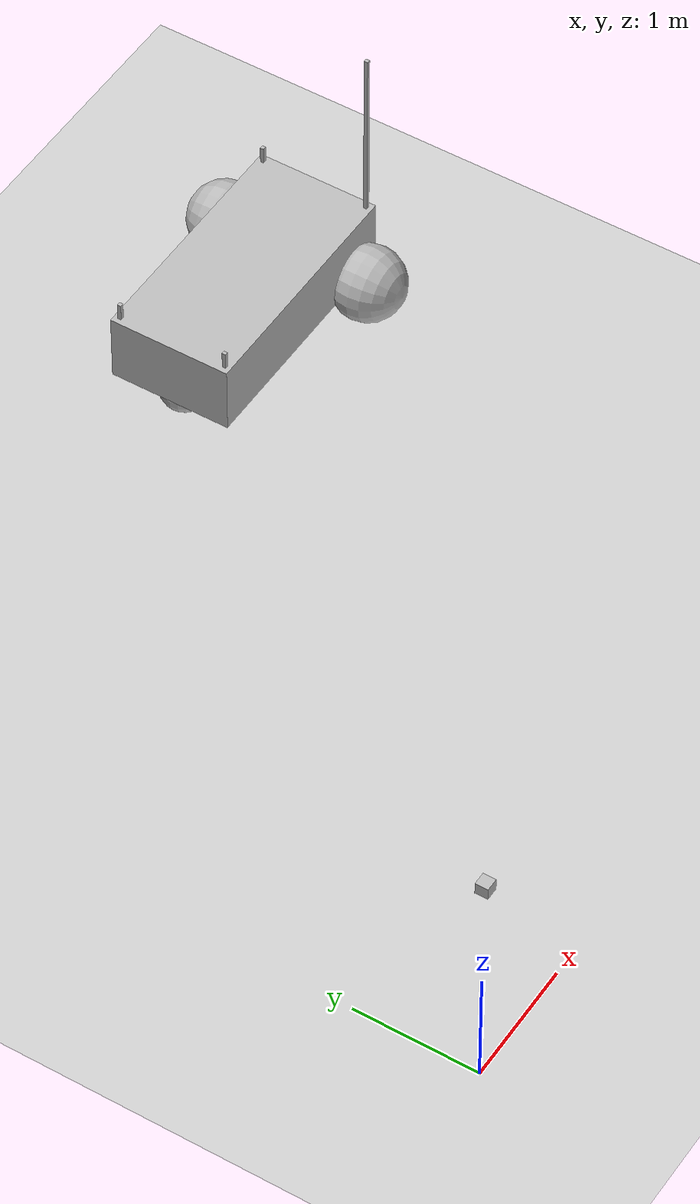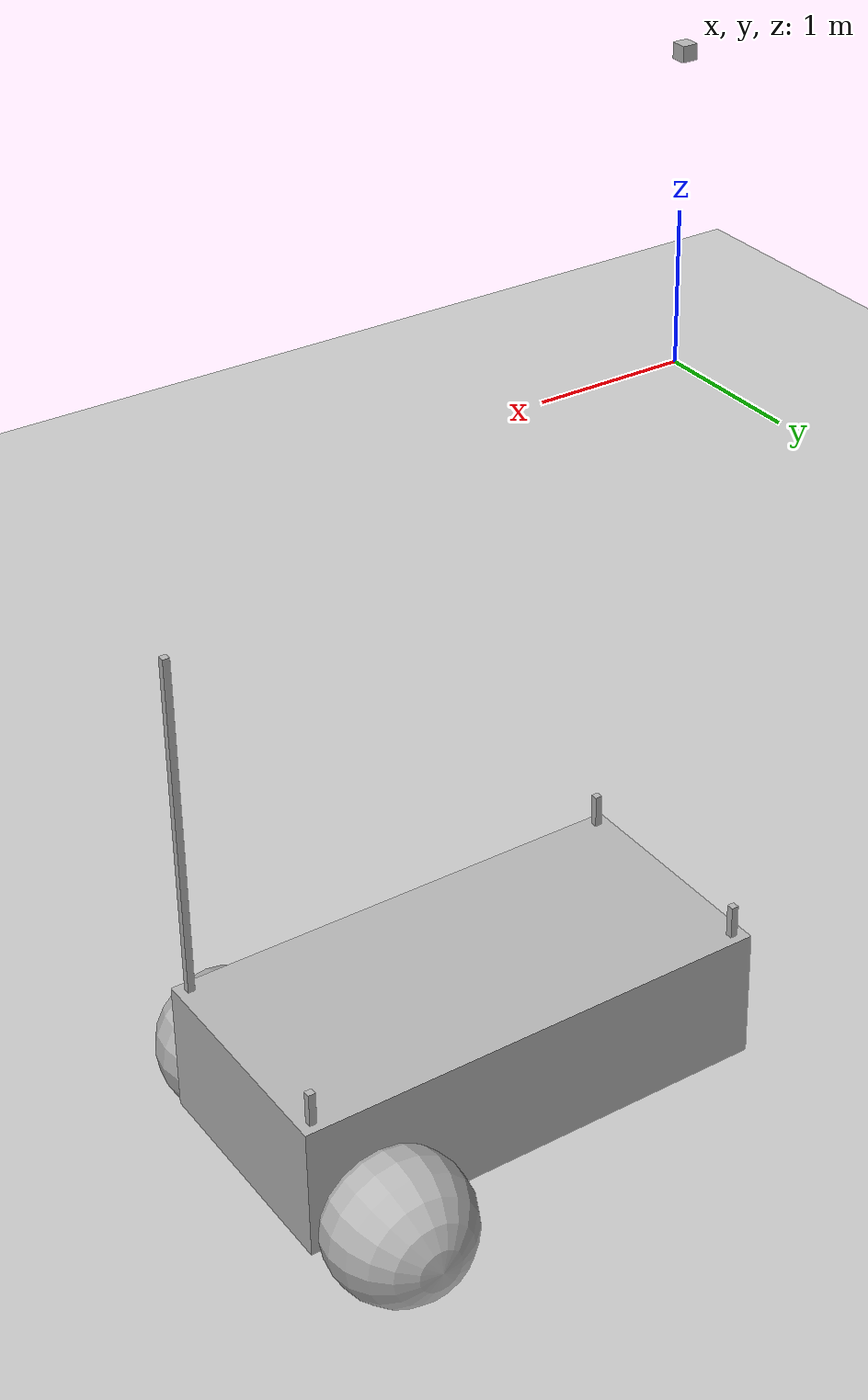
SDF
<?xml version="1.0" ?>
<sdf version="1.5">
  <world name="default">
    <scene>
      <shadows>0</shadows>
    </scene>
    <!-- A global light source -->
    <include>
      <uri>model://sun</uri>
    </include>
    <!-- A ground plane -->
    <include>
      <uri>model://ground_plane</uri>
    </include>
		<!-- vehicle -->

    <include>
			<name>rover_uwb</name>
      <uri>models//rover_uwb</uri>
			<pose>5 5 0.325 0 0 0</pose>
    </include>

    <include>
			<name>uwb_sensor</name>
      <uri>models//uwb_sensor</uri>
			<pose>0 0 2 0 0 0</pose>
    </include>

		<!-- Physics -->
    <physics name='default_physics' default='0' type='ode'>
      <gravity>0 0 -9.8066</gravity>
      <ode>
        <solver>
          <type>quick</type>
          <iters>10</iters>
          <sor>1.3</sor>
          <use_dynamic_moi_rescaling>0</use_dynamic_moi_rescaling>
        </solver>
        <constraints>
          <cfm>0</cfm>
          <erp>0.2</erp>
          <contact_max_correcting_vel>100</contact_max_correcting_vel>
          <contact_surface_layer>0.001</contact_surface_layer>
        </constraints>
      </ode>
      <max_step_size>0.004</max_step_size>
      <real_time_factor>1</real_time_factor>
      <real_time_update_rate>250</real_time_update_rate>
      <magnetic_field>6.0e-6 2.3e-5 -4.2e-5</magnetic_field>
    </physics>
  </world>
</sdf>

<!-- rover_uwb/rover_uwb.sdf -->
<sdf version='1.6'>

<model name='rover_uwb'>
      <pose>2 5 0.325 0 -0 0</pose>

      <link name='chassis'>
        <pose>-0.151427 -0 0.175 0 -0 0</pose>
        <inertial>
          <mass>1.14395</mass>
          <inertia>
            <ixx>0.126164</ixx>
            <ixy>0</ixy>
            <ixz>0</ixz>
            <iyy>0.416519</iyy>
            <iyz>0</iyz>
            <izz>0.481014</izz>
          </inertia>
        </inertial>
        <visual name='visual'>
          <geometry>
            <box>
              <size>2.01142 1 0.568726</size>
            </box>
          </geometry>
        </visual>
        <collision name='collision'>
          <geometry>
            <box>
              <size>2.01142 1 0.568726</size>
            </box>
          </geometry>
          <surface>
            <friction>
              <ode>
                <mu>0.7</mu>
                <mu2>0.7</mu2>
                <slip1>0</slip1>
                <slip2>0</slip2>
              </ode>
            </friction>
            <contact>
              <ode>
                <soft_cfm>0</soft_cfm>
                <soft_erp>0.2</soft_erp>
                <kp>1e+13</kp>
                <kd>1</kd>
                <max_vel>0.01</max_vel>
                <min_depth>0.01</min_depth>
              </ode>
              <bullet>
                <soft_cfm>0</soft_cfm>
                <soft_erp>0.2</soft_erp>
                <kp>1e+13</kp>
                <kd>1</kd>
		<split_impulse>1</split_impulse>
		<split_impulse_penetration_threshold>-0.01</split_impulse_penetration_threshold>
              </bullet>
            </contact>
          </surface>
        </collision>
      </link>

      <link name='left_wheel'>
        <pose>0.554283 0.625029 -0.025 -1.5707 0 0</pose>
        <inertial>
          <mass>2</mass>
          <inertia>
            <ixx>0.145833</ixx>
            <ixy>0</ixy>
            <ixz>0</ixz>
            <iyy>0.145833</iyy>
            <iyz>0</iyz>
            <izz>0.125</izz>
          </inertia>
        </inertial>
        <visual name='visual'>
          <geometry>
            <sphere>
              <radius>0.3</radius>
            </sphere>
          </geometry>
        </visual>
        <collision name='collision'>
          <geometry>
            <sphere>
              <radius>0.3</radius>
            </sphere>
          </geometry>
          <surface>
            <friction>
              <ode>
                <mu>1</mu>
                <mu2>1</mu2>
                <slip1>0</slip1>
                <slip2>0</slip2>
              </ode>
            </friction>
            <contact>
              <ode>
                <soft_cfm>0</soft_cfm>
                <soft_erp>0.2</soft_erp>
                <kp>1e+13</kp>
                <kd>1</kd>
                <max_vel>0.01</max_vel>
                <min_depth>0.01</min_depth>
              </ode>
            </contact>
          </surface>
        </collision>
      </link>

      <link name='right_wheel'>
        <pose>0.554282 -0.625029 -0.025 -1.5707 0 0</pose>
        <inertial>
          <mass>2</mass>
          <inertia>
            <ixx>0.145833</ixx>
            <ixy>0</ixy>
            <ixz>0</ixz>
            <iyy>0.145833</iyy>
            <iyz>0</iyz>
            <izz>0.125</izz>
          </inertia>
        </inertial>
        <visual name='visual'>
          <geometry>
            <sphere>
              <radius>0.3</radius>
            </sphere>
          </geometry>
        </visual>
        <collision name='collision'>
          <geometry>
            <sphere>
              <radius>0.3</radius>
            </sphere>
          </geometry>
          <surface>
            <friction>
              <ode>
                <mu>1</mu>
                <mu2>1</mu2>
                <slip1>0</slip1>
                <slip2>0</slip2>
              </ode>
            </friction>
            <contact>
              <ode>
                <soft_cfm>0</soft_cfm>
                <soft_erp>0.2</soft_erp>
                <kp>1e+13</kp>
                <kd>1</kd>
                <max_vel>0.01</max_vel>
                <min_depth>0.01</min_depth>
              </ode>
            </contact>
          </surface>
        </collision>
      </link>

      <link name='caster'>
        <pose>-0.957138 -0 -0.125 0 -0 0</pose>
        <inertial>
          <mass>1</mass>
          <inertia>
            <ixx>0.1</ixx>
            <ixy>0</ixy>
            <ixz>0</ixz>
            <iyy>0.1</iyy>
            <iyz>0</iyz>
            <izz>0.1</izz>
          </inertia>
        </inertial>
        <visual name='visual'>
          <geometry>
            <sphere>
              <radius>0.2</radius>
            </sphere>
          </geometry>
        </visual>
        <collision name='collision'>
          <geometry>
            <sphere>
              <radius>0.2</radius>
            </sphere>
          </geometry>
        </collision>
      </link>

      <link name='anchor_0'>
        <pose>-1.1 -0.45 0.5 0 -0 0</pose>
        <inertial>
          <mass>1</mass>
          <inertia>
            <ixx>0.1</ixx>
            <ixy>0</ixy>
            <ixz>0</ixz>
            <iyy>0.1</iyy>
            <iyz>0</iyz>
            <izz>0.1</izz>
          </inertia>
        </inertial>
        <visual name='visual'>
          <geometry>
            <box>
              <size>0.03 0.03 0.2</size>
            </box>
          </geometry>
        </visual>
        <collision name='collision'>
          <geometry>
            <box>
              <size>0.03 0.03 0.2</size>
            </box>
          </geometry>
        </collision>

      </link>

      <joint name='anchor_0_joint' type='fixed'>
        <parent>chassis</parent>
        <child>anchor_0</child>
        <axis>
          <xyz>0 0 1</xyz>
        </axis>
      </joint>

      <link name='anchor_1'>
        <pose>0.8 0.45 0.5 0 -0 0</pose>
        <inertial>
          <mass>1</mass>
          <inertia>
            <ixx>0.1</ixx>
            <ixy>0</ixy>
            <ixz>0</ixz>
            <iyy>0.1</iyy>
            <iyz>0</iyz>
            <izz>0.1</izz>
          </inertia>
        </inertial>
        <visual name='visual'>
          <geometry>
            <box>
              <size>0.03 0.03 0.2</size>
            </box>
          </geometry>
        </visual>
        <collision name='collision'>
          <geometry>
            <box>
              <size>0.03 0.03 0.2</size>
            </box>
          </geometry>
        </collision>

      </link>

      <joint name='anchor_1_joint' type='fixed'>
        <parent>chassis</parent>
        <child>anchor_1</child>
        <axis>
          <xyz>0 0 1</xyz>
        </axis>
      </joint>

      <link name='anchor_2'>
        <pose>-1.1 +0.45 0.5 0 -0 0</pose>
        <inertial>
          <mass>1</mass>
          <inertia>
            <ixx>0.1</ixx>
            <ixy>0</ixy>
            <ixz>0</ixz>
            <iyy>0.1</iyy>
            <iyz>0</iyz>
            <izz>0.1</izz>
          </inertia>
        </inertial>
        <visual name='visual'>
          <geometry>
            <box>
              <size>0.03 0.03 0.2</size>
            </box>
          </geometry>
        </visual>
        <collision name='collision'>
          <geometry>
            <box>
              <size>0.03 0.03 0.2</size>
            </box>
          </geometry>
        </collision>
      </link>

      <joint name='anchor_2_joint' type='fixed'>
        <parent>chassis</parent>
        <child>anchor_2</child>
        <axis>
          <xyz>0 0 1</xyz>
        </axis>
      </joint>

      <link name='anchor_3'>
        <pose>+0.8 -0.45 1.2 0 -0 0</pose>
        <inertial>
          <mass>1</mass>
          <inertia>
            <ixx>0.1</ixx>
            <ixy>0</ixy>
            <ixz>0</ixz>
            <iyy>0.1</iyy>
            <iyz>0</iyz>
            <izz>0.1</izz>
          </inertia>
        </inertial>
        <visual name='visual'>
          <geometry>
            <box>
              <size>0.03 0.03 1.5</size>
            </box>
          </geometry>
        </visual>
        <collision name='collision'>
          <geometry>
            <box>
              <size>0.03 0.03 0.7</size>
            </box>
          </geometry>
        </collision>
      </link>

      <joint name='anchor_3_joint' type='fixed'>
        <parent>chassis</parent>
        <child>anchor_3</child>
        <axis>
          <xyz>0 0 1</xyz>
        </axis>
      </joint>

      <joint name='left_wheel_joint' type='revolute'>
        <parent>chassis</parent>
        <child>left_wheel</child>
        <axis>
          <xyz>0 0 1</xyz>
          <limit>
            <lower>-1.79769e+308</lower>
            <upper>1.79769e+308</upper>
          </limit>
        </axis>
      </joint>

      <joint name='right_wheel_joint' type='revolute'>
        <parent>chassis</parent>
        <child>right_wheel</child>
        <axis>
          <xyz>0 0 1</xyz>
          <limit>
            <lower>-1.79769e+308</lower>
            <upper>1.79769e+308</upper>
          </limit>
        </axis>
      </joint>

      <joint name='caster_wheel' type='ball'>
        <parent>chassis</parent>
        <child>caster</child>
      </joint>

      <plugin name='diff_drive' filename='libgazebo_ros_diff_drive.so'>

        <ros>
          <namespace>/rover_uwb
        </namespace>
        </ros>

        <!-- wheels -->
        <left_joint>left_wheel_joint</left_joint>
        <right_joint>right_wheel_joint</right_joint>

        <!-- kinematics -->
        <wheel_separation>1.25</wheel_separation>
        <wheel_diameter>0.6</wheel_diameter>

        <!-- limits -->
        <max_wheel_torque>20.0</max_wheel_torque>
        <max_wheel_acceleration>1.0</max_wheel_acceleration>

        <!-- output -->
        <publish_odom>true</publish_odom>
        <publish_odom_tf>true</publish_odom_tf>
        <publish_wheel_tf>true</publish_wheel_tf>

        <odometry_frame>odom_rover</odometry_frame>
        <robot_base_frame>chassis</robot_base_frame>

      </plugin>

      <plugin name="gazebo_ros_p3d" filename="libgazebo_ros_p3d.so">
        <ros>
          <namespace>/chassis_anchor_0</namespace>
        </ros>
        <body_name>chassis</body_name>
        <frame_name>anchor_0</frame_name>
        <update_rate>50</update_rate>
        <xyz_offset>0 0 0</xyz_offset>
        <rpy_offset>0 0 0</rpy_offset>
        <gaussian_noise>0</gaussian_noise>
      </plugin>

      <plugin name="gazebo_ros_p3d" filename="libgazebo_ros_p3d.so">
        <ros>
          <namespace>/chassis</namespace>
        </ros>
        <body_name>chassis</body_name>
        <frame_name>world</frame_name>
        <update_rate>50</update_rate>
        <xyz_offset>0 0 0</xyz_offset>
        <rpy_offset>0 0 0</rpy_offset>
        <gaussian_noise>0</gaussian_noise>
      </plugin>

      <plugin name="gazebo_ros_p3d" filename="libgazebo_ros_p3d.so">
        <ros>
          <namespace>/anchor_0</namespace>
        </ros>
        <body_name>anchor_0</body_name>
        <frame_name>world</frame_name>
        <update_rate>50</update_rate>
        <xyz_offset>0 0 0</xyz_offset>
        <rpy_offset>0 0 0</rpy_offset>
        <gaussian_noise>0</gaussian_noise>
      </plugin>

        <plugin name="uwb_plugin" filename="libgazebo_ros_uwb.so">
			<link_name>anchor_0</link_name>
			<update_rate>1</update_rate>
		</plugin>

        <plugin name="uwb_plugin" filename="libgazebo_ros_uwb.so">
			<link_name>anchor_1</link_name>
			<update_rate>1</update_rate>
		</plugin>

        <plugin name="uwb_plugin" filename="libgazebo_ros_uwb.so">
			<link_name>anchor_2</link_name>
			<update_rate>1</update_rate>
		</plugin>

        <plugin name="uwb_plugin" filename="libgazebo_ros_uwb.so">
			<link_name>anchor_3</link_name>
			<update_rate>1</update_rate>
		</plugin>

  </model>
</sdf>

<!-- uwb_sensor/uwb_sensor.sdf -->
<sdf version='1.6'>
  <model name='uwb_sensor'>
    <pose>0 0 0 0 0 0</pose>
    <link name="uwb_sensor_head">
      <visual name='uwb_sensor_head_visual'>
        <pose>0 0 0 0 0 0</pose>
        <geometry>
          <box>
            <size>0.1 0.1 0.1</size>
          </box>
        </geometry>
      </visual>
      <collision name="uwb_sensor_head_collision">
        <pose>0 0 0 0 0 0</pose>
        <geometry>
          <box>
            <size>0.1 0.1 0.1</size>
          </box>
        </geometry>
      </collision>
    </link>
    <plugin name="gazebo_ros_uwb" filename="libgazebo_ros_uwb.so">
      <is_sensor />
      <anchor_id>0</anchor_id>
      <link_name>uwb_sensor_head</link_name>
      <update_rate>5</update_rate>
      <gaussian_noise>0.005</gaussian_noise>
    </plugin>

    <plugin name="gazebo_ros_p3d" filename="libgazebo_ros_p3d.so">
      <ros>
        <namespace>/uwb_sensor_0_true</namespace>
      </ros>
      <body_name>uwb_sensor_head</body_name>
      <frame_name>world</frame_name>
      <update_rate>10</update_rate>
    </plugin>

    <plugin name="gazebo_ros_hand_of_god" filename="libgazebo_ros_hand_of_god.so">
      <link_name>uwb_sensor_head</link_name>
      <frame_id>uwb_sensor_head</frame_id>
      <kl>0.1</kl>
    </plugin>

  </model>
</sdf>
